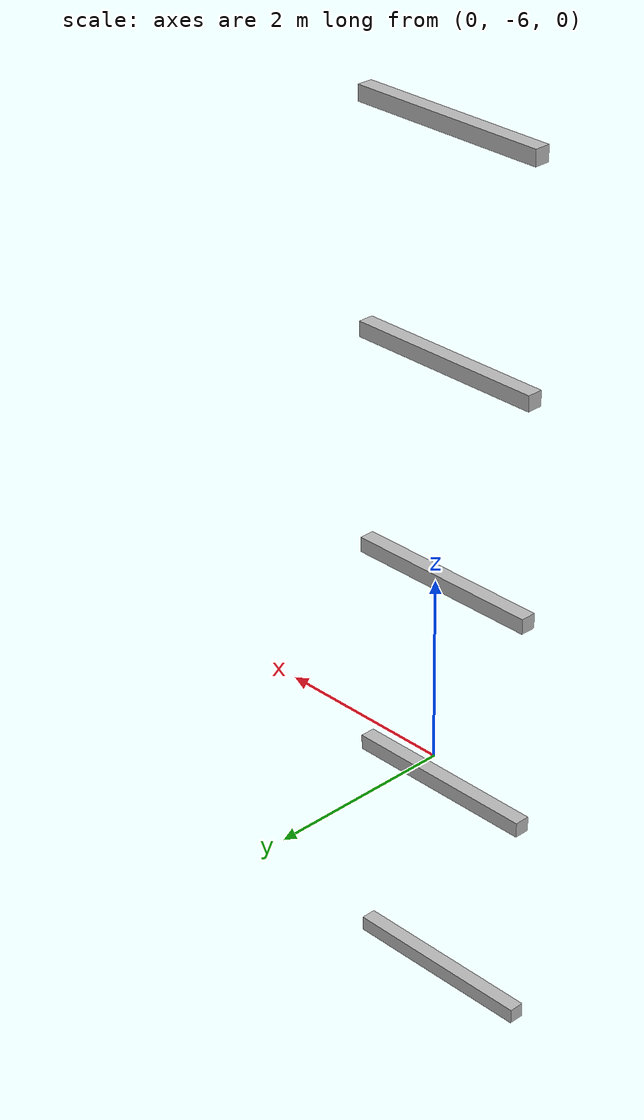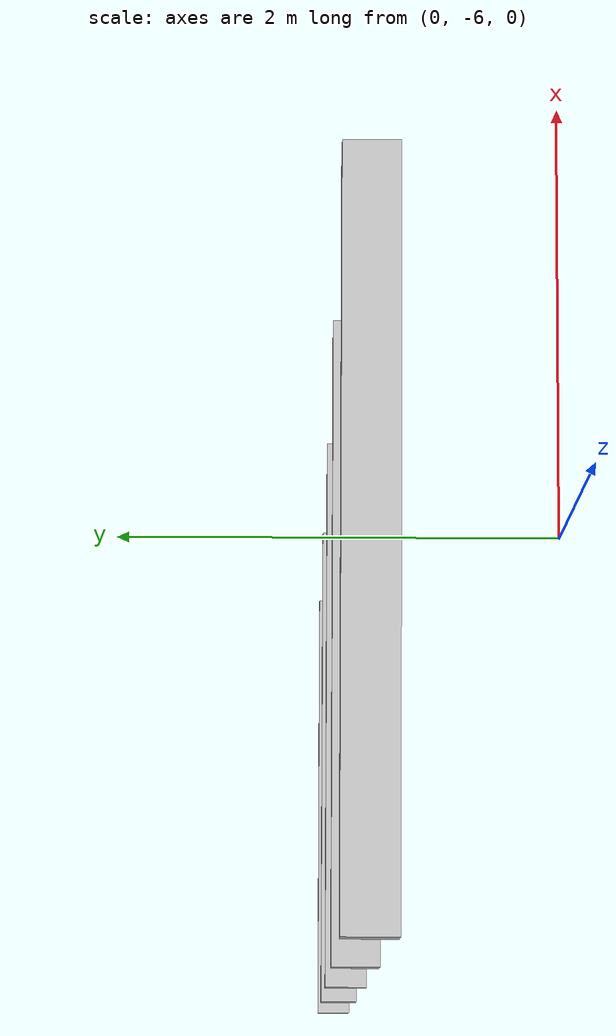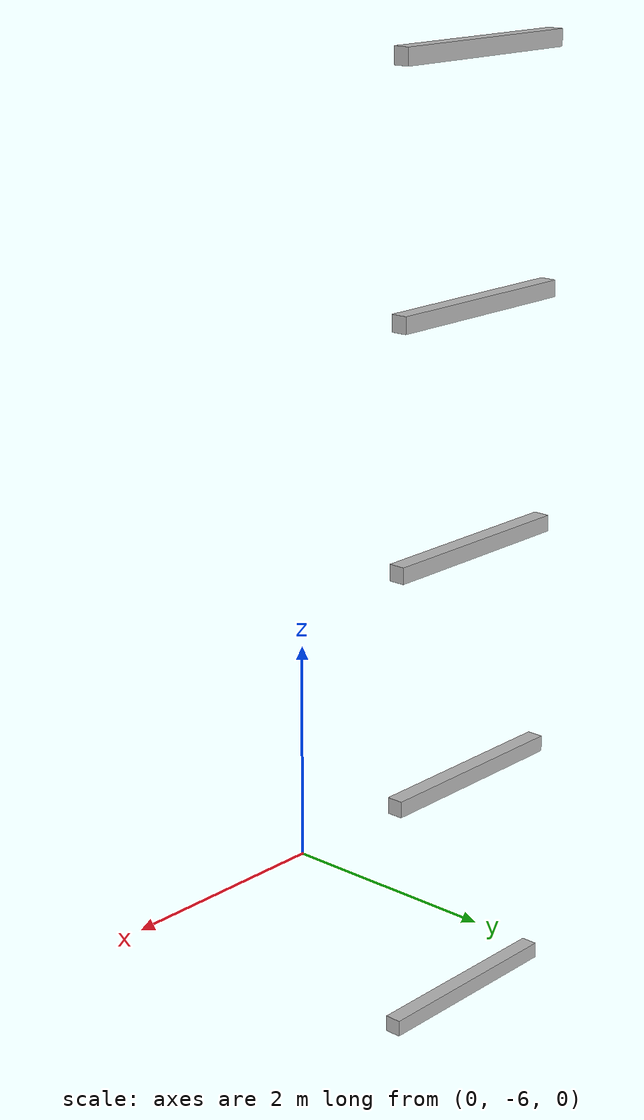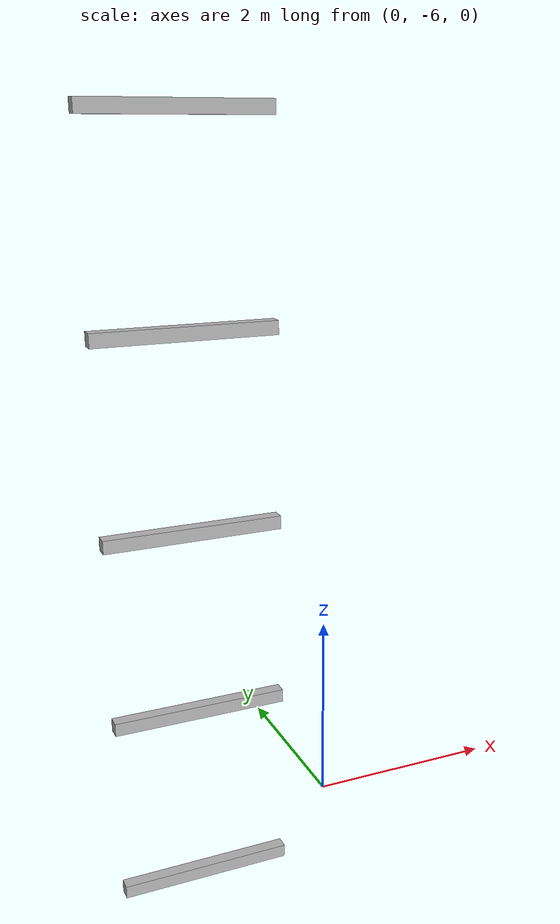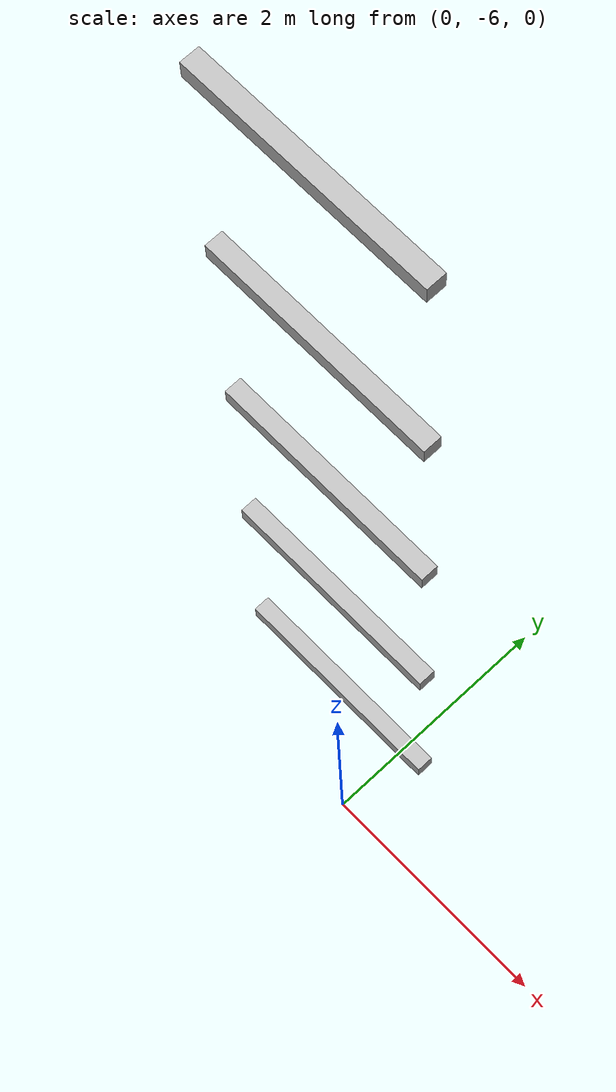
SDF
<sdf version="1.7">
 <world name="default">
  <model name="orthogonal_747_2.000.15_TS">
   <static>1</static>
   <link name="x_link_0_0_2">
    <inertial>
     <mass>1</mass>
     <inertia>
      <ixx>0.166667</ixx>
      <ixy>0</ixy>
      <ixz>0</ixz>
      <iyy>0.166667</iyy>
      <iyz>0</iyz>
      <izz>0.166667</izz>
     </inertia>
    </inertial>
    <pose>5.375 0 1.075 0 -0 0</pose>
    <visual name="visual_0">
     <laser_retro>43</laser_retro>
     <geometry><box><size>2 1e-06 0.15</size></box></geometry>
     <material>
      <script><name>Gazebo/Grey</name><uri>file://media/materials/scripts/gazebo.material</uri></script>
      <shader type="pixel"><normal_map>__default__</normal_map></shader>
      <ambient>0.678 0.498 0.659 1</ambient>
      <diffuse>0.7 0.7 0.7 1</diffuse>
      <specular>0.01 0.01 0.01 1</specular>
      <emissive>0 0 0 1</emissive>
     </material>
     <pose>0 -0.075 0 0 -0 0</pose>
     <transparency>1</transparency>
    </visual>
    <visual name="visual_1">
     <laser_retro>44</laser_retro>
     <geometry><box><size>2 1e-06 0.15</size></box></geometry>
     <material>
      <script><name>Gazebo/Grey</name><uri>file://media/materials/scripts/gazebo.material</uri></script>
      <shader type="pixel"><normal_map>__default__</normal_map></shader>
      <ambient>0.447 0.624 0.812 1</ambient>
      <diffuse>0.7 0.7 0.7 1</diffuse>
      <specular>0.01 0.01 0.01 1</specular>
      <emissive>0 0 0 1</emissive>
     </material>
     <pose>0 0.075 0 0 -0 0</pose>
     <transparency>1</transparency>
    </visual>
    <visual name="visual_2">
     <laser_retro>45</laser_retro>
     <geometry><box><size>2 0.15 1e-06</size></box></geometry>
     <material>
      <script><name>Gazebo/Grey</name><uri>file://media/materials/scripts/gazebo.material</uri></script>
      <shader type="pixel"><normal_map>__default__</normal_map></shader>
      <ambient>0.988 0.686 0.243 1</ambient>
      <diffuse>0.7 0.7 0.7 1</diffuse>
      <specular>0.01 0.01 0.01 1</specular>
      <emissive>0 0 0 1</emissive>
     </material>
     <pose>0 0 -0.075 0 -0 0</pose>
     <transparency>1</transparency>
    </visual>
    <visual name="visual_3">
     <laser_retro>46</laser_retro>
     <geometry><box><size>1e-06 0.15 0.15</size></box></geometry>
     <material>
      <script><name>Gazebo/Grey</name><uri>file://media/materials/scripts/gazebo.material</uri></script>
      <shader type="pixel"><normal_map>__default__</normal_map></shader>
      <ambient>0.988 0.914 0.31 1</ambient>
      <diffuse>0.7 0.7 0.7 1</diffuse>
      <specular>0.01 0.01 0.01 1</specular>
      <emissive>0 0 0 1</emissive>
     </material>
     <pose>1 0 0 0 -0 0</pose>
     <transparency>1</transparency>
    </visual>
    <visual name="visual_4">
     <laser_retro>47</laser_retro>
     <geometry><box><size>2 0.15 1e-06</size></box></geometry>
     <material>
      <script><name>Gazebo/Grey</name><uri>file://media/materials/scripts/gazebo.material</uri></script>
      <shader type="pixel"><normal_map>__default__</normal_map></shader>
      <ambient>0.937 0.161 0.161 1</ambient>
      <diffuse>0.7 0.7 0.7 1</diffuse>
      <specular>0.01 0.01 0.01 1</specular>
      <emissive>0 0 0 1</emissive>
     </material>
     <pose>0 0 0.075 0 -0 0</pose>
     <transparency>1</transparency>
    </visual>
    <visual name="visual_5">
     <laser_retro>48</laser_retro>
     <geometry><box><size>1e-06 0.15 0.15</size></box></geometry>
     <material>
      <script><name>Gazebo/Grey</name><uri>file://media/materials/scripts/gazebo.material</uri></script>
      <shader type="pixel"><normal_map>__default__</normal_map></shader>
      <ambient>0.541 0.886 0.204 1</ambient>
      <diffuse>0.7 0.7 0.7 1</diffuse>
      <specular>0.01 0.01 0.01 1</specular>
      <emissive>0 0 0 1</emissive>
     </material>
     <pose>-1 0 0 0 -0 0</pose>
     <transparency>1</transparency>
    </visual>
    <visual name="visual_texture">
     <geometry><box><size>1.9998 0.149985 0.149985</size></box></geometry>
     <material>
      <script>
       <uri>model://BASE_MODELS/simple_block_v2_textured/materials/scripts</uri>
       <uri>model://BASE_MODELS/simple_block_v2_textured/materials/textures</uri>
       <name>metal</name>
      </script>
     </material>
     <laser_retro>49</laser_retro>
    </visual>
    <collision name="collision">
     <geometry><box><size>2 0.15 0.15</size></box></geometry>
     <surface>
      <friction>
       <ode><mu>1</mu><mu2>1</mu2><fdir1>0 0 0</fdir1><slip1>0</slip1><slip2>0</slip2></ode>
       <torsional>
        <coefficient>1</coefficient>
        <patch_radius>0</patch_radius>
        <surface_radius>0</surface_radius>
        <use_patch_radius>1</use_patch_radius>
        <ode><slip>0</slip></ode>
       </torsional>
      </friction>
      <bounce><restitution_coefficient>0</restitution_coefficient><threshold>1e+06</threshold></bounce>
      <contact>
       <collide_without_contact>0</collide_without_contact>
       <collide_without_contact_bitmask>1</collide_without_contact_bitmask>
       <collide_bitmask>1</collide_bitmask>
       <ode>
        <soft_cfm>0</soft_cfm>
        <soft_erp>0.2</soft_erp>
        <kp>1e+13</kp>
        <kd>1</kd>
        <max_vel>0.01</max_vel>
        <min_depth>0</min_depth>
       </ode>
       <bullet>
        <split_impulse>1</split_impulse>
        <split_impulse_penetration_threshold>-0.01</split_impulse_penetration_threshold>
        <soft_cfm>0</soft_cfm>
        <soft_erp>0.2</soft_erp>
        <kp>1e+13</kp>
        <kd>1</kd>
       </bullet>
      </contact>
     </surface>
    </collision>
   </link>
   <link name="x_link_1_0_2">
    <inertial>
     <mass>1</mass>
     <inertia>
      <ixx>0.166667</ixx>
      <ixy>0</ixy>
      <ixz>0</ixz>
      <iyy>0.166667</iyy>
      <iyz>0</iyz>
      <izz>0.166667</izz>
     </inertia>
    </inertial>
    <pose>5.375 0 3.225 0 -0 0</pose>
    <visual name="visual_0">
     <laser_retro>806</laser_retro>
     <geometry><box><size>2 1e-06 0.15</size></box></geometry>
     <material>
      <script><name>Gazebo/Grey</name><uri>file://media/materials/scripts/gazebo.material</uri></script>
      <shader type="pixel"><normal_map>__default__</normal_map></shader>
      <ambient>0.678 0.498 0.659 1</ambient>
      <diffuse>0.7 0.7 0.7 1</diffuse>
      <specular>0.01 0.01 0.01 1</specular>
      <emissive>0 0 0 1</emissive>
     </material>
     <pose>0 -0.075 0 0 -0 0</pose>
     <transparency>1</transparency>
    </visual>
    <visual name="visual_1">
     <laser_retro>807</laser_retro>
     <geometry><box><size>2 1e-06 0.15</size></box></geometry>
     <material>
      <script><name>Gazebo/Grey</name><uri>file://media/materials/scripts/gazebo.material</uri></script>
      <shader type="pixel"><normal_map>__default__</normal_map></shader>
      <ambient>0.447 0.624 0.812 1</ambient>
      <diffuse>0.7 0.7 0.7 1</diffuse>
      <specular>0.01 0.01 0.01 1</specular>
      <emissive>0 0 0 1</emissive>
     </material>
     <pose>0 0.075 0 0 -0 0</pose>
     <transparency>1</transparency>
    </visual>
    <visual name="visual_2">
     <laser_retro>808</laser_retro>
     <geometry><box><size>2 0.15 1e-06</size></box></geometry>
     <material>
      <script><name>Gazebo/Grey</name><uri>file://media/materials/scripts/gazebo.material</uri></script>
      <shader type="pixel"><normal_map>__default__</normal_map></shader>
      <ambient>0.988 0.686 0.243 1</ambient>
      <diffuse>0.7 0.7 0.7 1</diffuse>
      <specular>0.01 0.01 0.01 1</specular>
      <emissive>0 0 0 1</emissive>
     </material>
     <pose>0 0 -0.075 0 -0 0</pose>
     <transparency>1</transparency>
    </visual>
    <visual name="visual_3">
     <laser_retro>809</laser_retro>
     <geometry><box><size>1e-06 0.15 0.15</size></box></geometry>
     <material>
      <script><name>Gazebo/Grey</name><uri>file://media/materials/scripts/gazebo.material</uri></script>
      <shader type="pixel"><normal_map>__default__</normal_map></shader>
      <ambient>0.988 0.914 0.31 1</ambient>
      <diffuse>0.7 0.7 0.7 1</diffuse>
      <specular>0.01 0.01 0.01 1</specular>
      <emissive>0 0 0 1</emissive>
     </material>
     <pose>1 0 0 0 -0 0</pose>
     <transparency>1</transparency>
    </visual>
    <visual name="visual_4">
     <laser_retro>810</laser_retro>
     <geometry><box><size>2 0.15 1e-06</size></box></geometry>
     <material>
      <script><name>Gazebo/Grey</name><uri>file://media/materials/scripts/gazebo.material</uri></script>
      <shader type="pixel"><normal_map>__default__</normal_map></shader>
      <ambient>0.937 0.161 0.161 1</ambient>
      <diffuse>0.7 0.7 0.7 1</diffuse>
      <specular>0.01 0.01 0.01 1</specular>
      <emissive>0 0 0 1</emissive>
     </material>
     <pose>0 0 0.075 0 -0 0</pose>
     <transparency>1</transparency>
    </visual>
    <visual name="visual_5">
     <laser_retro>811</laser_retro>
     <geometry><box><size>1e-06 0.15 0.15</size></box></geometry>
     <material>
      <script><name>Gazebo/Grey</name><uri>file://media/materials/scripts/gazebo.material</uri></script>
      <shader type="pixel"><normal_map>__default__</normal_map></shader>
      <ambient>0.541 0.886 0.204 1</ambient>
      <diffuse>0.7 0.7 0.7 1</diffuse>
      <specular>0.01 0.01 0.01 1</specular>
      <emissive>0 0 0 1</emissive>
     </material>
     <pose>-1 0 0 0 -0 0</pose>
     <transparency>1</transparency>
    </visual>
    <visual name="visual_texture">
     <geometry><box><size>1.9998 0.149985 0.149985</size></box></geometry>
     <material>
      <script>
       <uri>model://BASE_MODELS/simple_block_v2_textured/materials/scripts</uri>
       <uri>model://BASE_MODELS/simple_block_v2_textured/materials/textures</uri>
       <name>metal</name>
      </script>
     </material>
     <laser_retro>812</laser_retro>
    </visual>
    <collision name="collision">
     <geometry><box><size>2 0.15 0.15</size></box></geometry>
     <surface>
      <friction>
       <ode><mu>1</mu><mu2>1</mu2><fdir1>0 0 0</fdir1><slip1>0</slip1><slip2>0</slip2></ode>
       <torsional>
        <coefficient>1</coefficient>
        <patch_radius>0</patch_radius>
        <surface_radius>0</surface_radius>
        <use_patch_radius>1</use_patch_radius>
        <ode><slip>0</slip></ode>
       </torsional>
      </friction>
      <bounce><restitution_coefficient>0</restitution_coefficient><threshold>1e+06</threshold></bounce>
      <contact>
       <collide_without_contact>0</collide_without_contact>
       <collide_without_contact_bitmask>1</collide_without_contact_bitmask>
       <collide_bitmask>1</collide_bitmask>
       <ode>
        <soft_cfm>0</soft_cfm>
        <soft_erp>0.2</soft_erp>
        <kp>1e+13</kp>
        <kd>1</kd>
        <max_vel>0.01</max_vel>
        <min_depth>0</min_depth>
       </ode>
       <bullet>
        <split_impulse>1</split_impulse>
        <split_impulse_penetration_threshold>-0.01</split_impulse_penetration_threshold>
        <soft_cfm>0</soft_cfm>
        <soft_erp>0.2</soft_erp>
        <kp>1e+13</kp>
        <kd>1</kd>
       </bullet>
      </contact>
     </surface>
    </collision>
   </link>
   <link name="x_link_2_0_2">
    <inertial>
     <mass>1</mass>
     <inertia>
      <ixx>0.166667</ixx>
      <ixy>0</ixy>
      <ixz>0</ixz>
      <iyy>0.166667</iyy>
      <iyz>0</iyz>
      <izz>0.166667</izz>
     </inertia>
    </inertial>
    <pose>5.375 0 5.375 0 -0 0</pose>
    <visual name="visual_0">
     <laser_retro>1709</laser_retro>
     <geometry><box><size>2 1e-06 0.15</size></box></geometry>
     <material>
      <script><name>Gazebo/Grey</name><uri>file://media/materials/scripts/gazebo.material</uri></script>
      <shader type="pixel"><normal_map>__default__</normal_map></shader>
      <ambient>0.678 0.498 0.659 1</ambient>
      <diffuse>0.7 0.7 0.7 1</diffuse>
      <specular>0.01 0.01 0.01 1</specular>
      <emissive>0 0 0 1</emissive>
     </material>
     <pose>0 -0.075 0 0 -0 0</pose>
     <transparency>1</transparency>
    </visual>
    <visual name="visual_1">
     <laser_retro>1710</laser_retro>
     <geometry><box><size>2 1e-06 0.15</size></box></geometry>
     <material>
      <script><name>Gazebo/Grey</name><uri>file://media/materials/scripts/gazebo.material</uri></script>
      <shader type="pixel"><normal_map>__default__</normal_map></shader>
      <ambient>0.447 0.624 0.812 1</ambient>
      <diffuse>0.7 0.7 0.7 1</diffuse>
      <specular>0.01 0.01 0.01 1</specular>
      <emissive>0 0 0 1</emissive>
     </material>
     <pose>0 0.075 0 0 -0 0</pose>
     <transparency>1</transparency>
    </visual>
    <visual name="visual_2">
     <laser_retro>1711</laser_retro>
     <geometry><box><size>2 0.15 1e-06</size></box></geometry>
     <material>
      <script><name>Gazebo/Grey</name><uri>file://media/materials/scripts/gazebo.material</uri></script>
      <shader type="pixel"><normal_map>__default__</normal_map></shader>
      <ambient>0.988 0.686 0.243 1</ambient>
      <diffuse>0.7 0.7 0.7 1</diffuse>
      <specular>0.01 0.01 0.01 1</specular>
      <emissive>0 0 0 1</emissive>
     </material>
     <pose>0 0 -0.075 0 -0 0</pose>
     <transparency>1</transparency>
    </visual>
    <visual name="visual_3">
     <laser_retro>1712</laser_retro>
     <geometry><box><size>1e-06 0.15 0.15</size></box></geometry>
     <material>
      <script><name>Gazebo/Grey</name><uri>file://media/materials/scripts/gazebo.material</uri></script>
      <shader type="pixel"><normal_map>__default__</normal_map></shader>
      <ambient>0.988 0.914 0.31 1</ambient>
      <diffuse>0.7 0.7 0.7 1</diffuse>
      <specular>0.01 0.01 0.01 1</specular>
      <emissive>0 0 0 1</emissive>
     </material>
     <pose>1 0 0 0 -0 0</pose>
     <transparency>1</transparency>
    </visual>
    <visual name="visual_4">
     <laser_retro>1713</laser_retro>
     <geometry><box><size>2 0.15 1e-06</size></box></geometry>
     <material>
      <script><name>Gazebo/Grey</name><uri>file://media/materials/scripts/gazebo.material</uri></script>
      <shader type="pixel"><normal_map>__default__</normal_map></shader>
      <ambient>0.937 0.161 0.161 1</ambient>
      <diffuse>0.7 0.7 0.7 1</diffuse>
      <specular>0.01 0.01 0.01 1</specular>
      <emissive>0 0 0 1</emissive>
     </material>
     <pose>0 0 0.075 0 -0 0</pose>
     <transparency>1</transparency>
    </visual>
    <visual name="visual_5">
     <laser_retro>1714</laser_retro>
     <geometry><box><size>1e-06 0.15 0.15</size></box></geometry>
     <material>
      <script><name>Gazebo/Grey</name><uri>file://media/materials/scripts/gazebo.material</uri></script>
      <shader type="pixel"><normal_map>__default__</normal_map></shader>
      <ambient>0.541 0.886 0.204 1</ambient>
      <diffuse>0.7 0.7 0.7 1</diffuse>
      <specular>0.01 0.01 0.01 1</specular>
      <emissive>0 0 0 1</emissive>
     </material>
     <pose>-1 0 0 0 -0 0</pose>
     <transparency>1</transparency>
    </visual>
    <visual name="visual_texture">
     <geometry><box><size>1.9998 0.149985 0.149985</size></box></geometry>
     <material>
      <script>
       <uri>model://BASE_MODELS/simple_block_v2_textured/materials/scripts</uri>
       <uri>model://BASE_MODELS/simple_block_v2_textured/materials/textures</uri>
       <name>metal</name>
      </script>
     </material>
     <laser_retro>1715</laser_retro>
    </visual>
    <collision name="collision">
     <geometry><box><size>2 0.15 0.15</size></box></geometry>
     <surface>
      <friction>
       <ode><mu>1</mu><mu2>1</mu2><fdir1>0 0 0</fdir1><slip1>0</slip1><slip2>0</slip2></ode>
       <torsional>
        <coefficient>1</coefficient>
        <patch_radius>0</patch_radius>
        <surface_radius>0</surface_radius>
        <use_patch_radius>1</use_patch_radius>
        <ode><slip>0</slip></ode>
       </torsional>
      </friction>
      <bounce><restitution_coefficient>0</restitution_coefficient><threshold>1e+06</threshold></bounce>
      <contact>
       <collide_without_contact>0</collide_without_contact>
       <collide_without_contact_bitmask>1</collide_without_contact_bitmask>
       <collide_bitmask>1</collide_bitmask>
       <ode>
        <soft_cfm>0</soft_cfm>
        <soft_erp>0.2</soft_erp>
        <kp>1e+13</kp>
        <kd>1</kd>
        <max_vel>0.01</max_vel>
        <min_depth>0</min_depth>
       </ode>
       <bullet>
        <split_impulse>1</split_impulse>
        <split_impulse_penetration_threshold>-0.01</split_impulse_penetration_threshold>
        <soft_cfm>0</soft_cfm>
        <soft_erp>0.2</soft_erp>
        <kp>1e+13</kp>
        <kd>1</kd>
       </bullet>
      </contact>
     </surface>
    </collision>
   </link>
   <link name="x_link_3_0_2">
    <inertial>
     <mass>1</mass>
     <inertia>
      <ixx>0.166667</ixx>
      <ixy>0</ixy>
      <ixz>0</ixz>
      <iyy>0.166667</iyy>
      <iyz>0</iyz>
      <izz>0.166667</izz>
     </inertia>
    </inertial>
    <pose>5.375 0 7.525 0 -0 0</pose>
    <visual name="visual_0">
     <laser_retro>2612</laser_retro>
     <geometry><box><size>2 1e-06 0.15</size></box></geometry>
     <material>
      <script><name>Gazebo/Grey</name><uri>file://media/materials/scripts/gazebo.material</uri></script>
      <shader type="pixel"><normal_map>__default__</normal_map></shader>
      <ambient>0.678 0.498 0.659 1</ambient>
      <diffuse>0.7 0.7 0.7 1</diffuse>
      <specular>0.01 0.01 0.01 1</specular>
      <emissive>0 0 0 1</emissive>
     </material>
     <pose>0 -0.075 0 0 -0 0</pose>
     <transparency>1</transparency>
    </visual>
    <visual name="visual_1">
     <laser_retro>2613</laser_retro>
     <geometry><box><size>2 1e-06 0.15</size></box></geometry>
     <material>
      <script><name>Gazebo/Grey</name><uri>file://media/materials/scripts/gazebo.material</uri></script>
      <shader type="pixel"><normal_map>__default__</normal_map></shader>
      <ambient>0.447 0.624 0.812 1</ambient>
      <diffuse>0.7 0.7 0.7 1</diffuse>
      <specular>0.01 0.01 0.01 1</specular>
      <emissive>0 0 0 1</emissive>
     </material>
     <pose>0 0.075 0 0 -0 0</pose>
     <transparency>1</transparency>
    </visual>
    <visual name="visual_2">
     <laser_retro>2614</laser_retro>
     <geometry><box><size>2 0.15 1e-06</size></box></geometry>
     <material>
      <script><name>Gazebo/Grey</name><uri>file://media/materials/scripts/gazebo.material</uri></script>
      <shader type="pixel"><normal_map>__default__</normal_map></shader>
      <ambient>0.988 0.686 0.243 1</ambient>
      <diffuse>0.7 0.7 0.7 1</diffuse>
      <specular>0.01 0.01 0.01 1</specular>
      <emissive>0 0 0 1</emissive>
     </material>
     <pose>0 0 -0.075 0 -0 0</pose>
     <transparency>1</transparency>
    </visual>
    <visual name="visual_3">
     <laser_retro>2615</laser_retro>
     <geometry><box><size>1e-06 0.15 0.15</size></box></geometry>
     <material>
      <script><name>Gazebo/Grey</name><uri>file://media/materials/scripts/gazebo.material</uri></script>
      <shader type="pixel"><normal_map>__default__</normal_map></shader>
      <ambient>0.988 0.914 0.31 1</ambient>
      <diffuse>0.7 0.7 0.7 1</diffuse>
      <specular>0.01 0.01 0.01 1</specular>
      <emissive>0 0 0 1</emissive>
     </material>
     <pose>1 0 0 0 -0 0</pose>
     <transparency>1</transparency>
    </visual>
    <visual name="visual_4">
     <laser_retro>2616</laser_retro>
     <geometry><box><size>2 0.15 1e-06</size></box></geometry>
     <material>
      <script><name>Gazebo/Grey</name><uri>file://media/materials/scripts/gazebo.material</uri></script>
      <shader type="pixel"><normal_map>__default__</normal_map></shader>
      <ambient>0.937 0.161 0.161 1</ambient>
      <diffuse>0.7 0.7 0.7 1</diffuse>
      <specular>0.01 0.01 0.01 1</specular>
      <emissive>0 0 0 1</emissive>
     </material>
     <pose>0 0 0.075 0 -0 0</pose>
     <transparency>1</transparency>
    </visual>
    <visual name="visual_5">
     <laser_retro>2617</laser_retro>
     <geometry><box><size>1e-06 0.15 0.15</size></box></geometry>
     <material>
      <script><name>Gazebo/Grey</name><uri>file://media/materials/scripts/gazebo.material</uri></script>
      <shader type="pixel"><normal_map>__default__</normal_map></shader>
      <ambient>0.541 0.886 0.204 1</ambient>
      <diffuse>0.7 0.7 0.7 1</diffuse>
      <specular>0.01 0.01 0.01 1</specular>
      <emissive>0 0 0 1</emissive>
     </material>
     <pose>-1 0 0 0 -0 0</pose>
     <transparency>1</transparency>
    </visual>
    <visual name="visual_texture">
     <geometry><box><size>1.9998 0.149985 0.149985</size></box></geometry>
     <material>
      <script>
       <uri>model://BASE_MODELS/simple_block_v2_textured/materials/scripts</uri>
       <uri>model://BASE_MODELS/simple_block_v2_textured/materials/textures</uri>
       <name>metal</name>
      </script>
     </material>
     <laser_retro>2618</laser_retro>
    </visual>
    <collision name="collision">
     <geometry><box><size>2 0.15 0.15</size></box></geometry>
     <surface>
      <friction>
       <ode><mu>1</mu><mu2>1</mu2><fdir1>0 0 0</fdir1><slip1>0</slip1><slip2>0</slip2></ode>
       <torsional>
        <coefficient>1</coefficient>
        <patch_radius>0</patch_radius>
        <surface_radius>0</surface_radius>
        <use_patch_radius>1</use_patch_radius>
        <ode><slip>0</slip></ode>
       </torsional>
      </friction>
      <bounce><restitution_coefficient>0</restitution_coefficient><threshold>1e+06</threshold></bounce>
      <contact>
       <collide_without_contact>0</collide_without_contact>
       <collide_without_contact_bitmask>1</collide_without_contact_bitmask>
       <collide_bitmask>1</collide_bitmask>
       <ode>
        <soft_cfm>0</soft_cfm>
        <soft_erp>0.2</soft_erp>
        <kp>1e+13</kp>
        <kd>1</kd>
        <max_vel>0.01</max_vel>
        <min_depth>0</min_depth>
       </ode>
       <bullet>
        <split_impulse>1</split_impulse>
        <split_impulse_penetration_threshold>-0.01</split_impulse_penetration_threshold>
        <soft_cfm>0</soft_cfm>
        <soft_erp>0.2</soft_erp>
        <kp>1e+13</kp>
        <kd>1</kd>
       </bullet>
      </contact>
     </surface>
    </collision>
   </link>
   <link name="x_link_4_0_2">
    <inertial>
     <mass>1</mass>
     <inertia>
      <ixx>0.166667</ixx>
      <ixy>0</ixy>
      <ixz>0</ixz>
      <iyy>0.166667</iyy>
      <iyz>0</iyz>
      <izz>0.166667</izz>
     </inertia>
    </inertial>
    <pose>5.375 0 9.675 0 -0 0</pose>
    <visual name="visual_0">
     <laser_retro>3515</laser_retro>
     <geometry><box><size>2 1e-06 0.15</size></box></geometry>
     <material>
      <script><name>Gazebo/Grey</name><uri>file://media/materials/scripts/gazebo.material</uri></script>
      <shader type="pixel"><normal_map>__default__</normal_map></shader>
      <ambient>0.678 0.498 0.659 1</ambient>
      <diffuse>0.7 0.7 0.7 1</diffuse>
      <specular>0.01 0.01 0.01 1</specular>
      <emissive>0 0 0 1</emissive>
     </material>
     <pose>0 -0.075 0 0 -0 0</pose>
     <transparency>1</transparency>
    </visual>
    <visual name="visual_1">
     <laser_retro>3516</laser_retro>
     <geometry><box><size>2 1e-06 0.15</size></box></geometry>
     <material>
      <script><name>Gazebo/Grey</name><uri>file://media/materials/scripts/gazebo.material</uri></script>
      <shader type="pixel"><normal_map>__default__</normal_map></shader>
      <ambient>0.447 0.624 0.812 1</ambient>
      <diffuse>0.7 0.7 0.7 1</diffuse>
      <specular>0.01 0.01 0.01 1</specular>
      <emissive>0 0 0 1</emissive>
     </material>
     <pose>0 0.075 0 0 -0 0</pose>
     <transparency>1</transparency>
    </visual>
    <visual name="visual_2">
     <laser_retro>3517</laser_retro>
     <geometry><box><size>2 0.15 1e-06</size></box></geometry>
     <material>
      <script><name>Gazebo/Grey</name><uri>file://media/materials/scripts/gazebo.material</uri></script>
      <shader type="pixel"><normal_map>__default__</normal_map></shader>
      <ambient>0.988 0.686 0.243 1</ambient>
      <diffuse>0.7 0.7 0.7 1</diffuse>
      <specular>0.01 0.01 0.01 1</specular>
      <emissive>0 0 0 1</emissive>
     </material>
     <pose>0 0 -0.075 0 -0 0</pose>
     <transparency>1</transparency>
    </visual>
    <visual name="visual_3">
     <laser_retro>3518</laser_retro>
     <geometry><box><size>1e-06 0.15 0.15</size></box></geometry>
     <material>
      <script><name>Gazebo/Grey</name><uri>file://media/materials/scripts/gazebo.material</uri></script>
      <shader type="pixel"><normal_map>__default__</normal_map></shader>
      <ambient>0.988 0.914 0.31 1</ambient>
      <diffuse>0.7 0.7 0.7 1</diffuse>
      <specular>0.01 0.01 0.01 1</specular>
      <emissive>0 0 0 1</emissive>
     </material>
     <pose>1 0 0 0 -0 0</pose>
     <transparency>1</transparency>
    </visual>
    <visual name="visual_4">
     <laser_retro>3519</laser_retro>
     <geometry><box><size>2 0.15 1e-06</size></box></geometry>
     <material>
      <script><name>Gazebo/Grey</name><uri>file://media/materials/scripts/gazebo.material</uri></script>
      <shader type="pixel"><normal_map>__default__</normal_map></shader>
      <ambient>0.937 0.161 0.161 1</ambient>
      <diffuse>0.7 0.7 0.7 1</diffuse>
      <specular>0.01 0.01 0.01 1</specular>
      <emissive>0 0 0 1</emissive>
     </material>
     <pose>0 0 0.075 0 -0 0</pose>
     <transparency>1</transparency>
    </visual>
    <visual name="visual_5">
     <laser_retro>3520</laser_retro>
     <geometry><box><size>1e-06 0.15 0.15</size></box></geometry>
     <material>
      <script><name>Gazebo/Grey</name><uri>file://media/materials/scripts/gazebo.material</uri></script>
      <shader type="pixel"><normal_map>__default__</normal_map></shader>
      <ambient>0.541 0.886 0.204 1</ambient>
      <diffuse>0.7 0.7 0.7 1</diffuse>
      <specular>0.01 0.01 0.01 1</specular>
      <emissive>0 0 0 1</emissive>
     </material>
     <pose>-1 0 0 0 -0 0</pose>
     <transparency>1</transparency>
    </visual>
    <visual name="visual_texture">
     <geometry><box><size>1.9998 0.149985 0.149985</size></box></geometry>
     <material>
      <script>
       <uri>model://BASE_MODELS/simple_block_v2_textured/materials/scripts</uri>
       <uri>model://BASE_MODELS/simple_block_v2_textured/materials/textures</uri>
       <name>metal</name>
      </script>
     </material>
     <laser_retro>3521</laser_retro>
    </visual>
    <collision name="collision">
     <geometry><box><size>2 0.15 0.15</size></box></geometry>
     <surface>
      <friction>
       <ode><mu>1</mu><mu2>1</mu2><fdir1>0 0 0</fdir1><slip1>0</slip1><slip2>0</slip2></ode>
       <torsional>
        <coefficient>1</coefficient>
        <patch_radius>0</patch_radius>
        <surface_radius>0</surface_radius>
        <use_patch_radius>1</use_patch_radius>
        <ode><slip>0</slip></ode>
       </torsional>
      </friction>
      <bounce><restitution_coefficient>0</restitution_coefficient><threshold>1e+06</threshold></bounce>
      <contact>
       <collide_without_contact>0</collide_without_contact>
       <collide_without_contact_bitmask>1</collide_without_contact_bitmask>
       <collide_bitmask>1</collide_bitmask>
       <ode>
        <soft_cfm>0</soft_cfm>
        <soft_erp>0.2</soft_erp>
        <kp>1e+13</kp>
        <kd>1</kd>
        <max_vel>0.01</max_vel>
        <min_depth>0</min_depth>
       </ode>
       <bullet>
        <split_impulse>1</split_impulse>
        <split_impulse_penetration_threshold>-0.01</split_impulse_penetration_threshold>
        <soft_cfm>0</soft_cfm>
        <soft_erp>0.2</soft_erp>
        <kp>1e+13</kp>
        <kd>1</kd>
       </bullet>
      </contact>
     </surface>
    </collision>
   </link>
   <pose>-6.47624 -5 -2.5 0 -0 0</pose>
  </model>
 </world>
</sdf>
